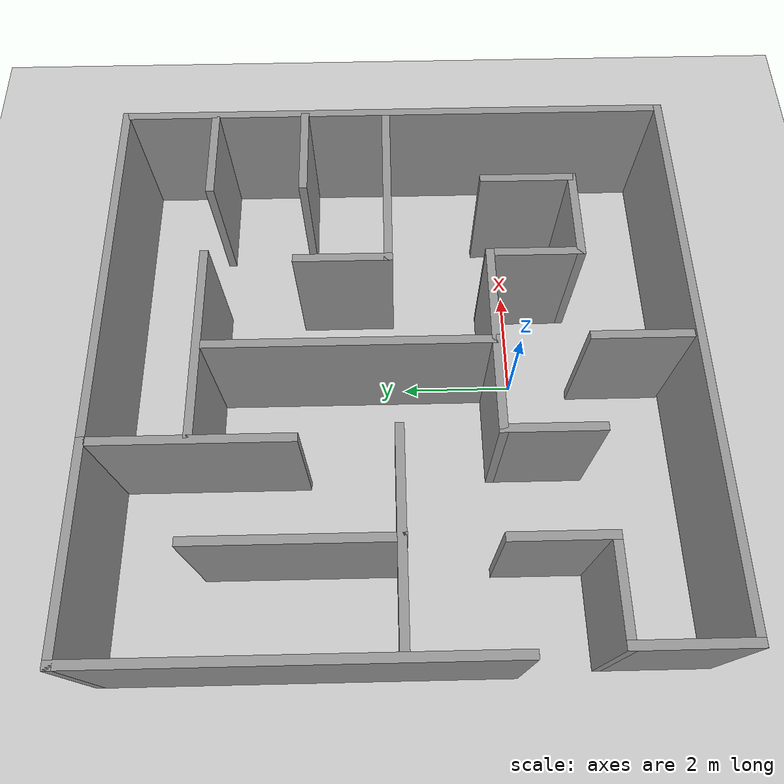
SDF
<sdf version="1.4">
   <world name="default">

     <scene>
       <ambient>0.4 0.4 0.4 1</ambient>
       <background>0.7 0.7 0.7 1</background>
       <shadows>true</shadows>
     </scene>

     <!-- A global light source -->
     <include>
       <uri>model://sun</uri>
     </include>

     <!-- A ground plane -->
     <include>
       <uri>model://ground_plane</uri>
     </include>

     <!-- Maze -->
     <include>
       <uri>model://simple_maze2</uri>
 	     <pose>-0.25 2.125 0 0 0 0</pose>
     </include>

     <physics type="ode">
       <real_time_update_rate>1000.0</real_time_update_rate>
       <max_step_size>0.001</max_step_size>
       <real_time_factor>1</real_time_factor>
       <ode>
         <solver>
           <type>quick</type>
           <iters>150</iters>
           <precon_iters>0</precon_iters>
           <sor>1.400000</sor>
           <use_dynamic_moi_rescaling>1</use_dynamic_moi_rescaling>
         </solver>
         <constraints>
           <cfm>0.00001</cfm>
           <erp>0.2</erp>
           <contact_max_correcting_vel>2000.000000</contact_max_correcting_vel>
           <contact_surface_layer>0.01000</contact_surface_layer>
         </constraints>
       </ode>
     </physics>

   </world>

 </sdf>

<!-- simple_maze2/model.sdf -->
<sdf version='1.7'>
  <model name='Untitled'>
    <pose>-0.056878 0.000736 0 0 -0 0</pose>
    <link name='Wall_1'>
      <collision name='Wall_1_Collision'>
        <geometry>
          <box>
            <size>7 0.15 2.5</size>
          </box>
        </geometry>
        <pose>0 0 1.25 0 -0 0</pose>
      </collision>
      <visual name='Wall_1_Visual'>
        <pose>0 0 1.25 0 -0 0</pose>
        <geometry>
          <box>
            <size>7 0.15 2.5</size>
          </box>
        </geometry>
        <material>
          <script>
            <uri>file://media/materials/scripts/gazebo.material</uri>
            <name>Gazebo/Grey</name>
          </script>
          <ambient>1 1 1 1</ambient>
        </material>
        <meta>
          <layer>0</layer>
        </meta>
      </visual>
      <pose>-4.9693 1.62378 0 0 -0 -1.5708</pose>
    </link>
    <link name='Wall_10'>
      <collision name='Wall_10_Collision'>
        <geometry>
          <box>
            <size>1.75 0.15 2.5</size>
          </box>
        </geometry>
        <pose>0 0 1.25 0 -0 0</pose>
      </collision>
      <visual name='Wall_10_Visual'>
        <pose>0 0 1.25 0 -0 0</pose>
        <geometry>
          <box>
            <size>1.75 0.15 2.5</size>
          </box>
        </geometry>
        <material>
          <script>
            <uri>file://media/materials/scripts/gazebo.material</uri>
            <name>Gazebo/Grey</name>
          </script>
          <ambient>1 1 1 1</ambient>
        </material>
        <meta>
          <layer>0</layer>
        </meta>
      </visual>
      <pose>-1.53873 -2.43052 0 0 -0 -1.5708</pose>
    </link>
    <link name='Wall_12'>
      <collision name='Wall_12_Collision'>
        <geometry>
          <box>
            <size>1.75 0.15 2.5</size>
          </box>
        </geometry>
        <pose>0 0 1.25 0 -0 0</pose>
      </collision>
      <visual name='Wall_12_Visual'>
        <pose>0 0 1.25 0 -0 0</pose>
        <geometry>
          <box>
            <size>1.75 0.15 2.5</size>
          </box>
        </geometry>
        <material>
          <script>
            <uri>file://media/materials/scripts/gazebo.material</uri>
            <name>Gazebo/Grey</name>
          </script>
          <ambient>1 1 1 1</ambient>
        </material>
        <meta>
          <layer>0</layer>
        </meta>
      </visual>
      <pose>-3.28072 -2.40001 0 0 -0 -1.5708</pose>
    </link>
    <link name='Wall_13'>
      <collision name='Wall_13_Collision'>
        <geometry>
          <box>
            <size>1.75 0.15 2.5</size>
          </box>
        </geometry>
        <pose>0 0 1.25 0 -0 0</pose>
      </collision>
      <visual name='Wall_13_Visual'>
        <pose>0 0 1.25 0 -0 0</pose>
        <geometry>
          <box>
            <size>1.75 0.15 2.5</size>
          </box>
        </geometry>
        <material>
          <script>
            <uri>file://media/materials/scripts/gazebo.material</uri>
            <name>Gazebo/Grey</name>
          </script>
          <ambient>1 1 1 1</ambient>
        </material>
        <meta>
          <layer>0</layer>
        </meta>
      </visual>
      <pose>-4.08072 -3.20001 0 0 -0 3.14159</pose>
    </link>
    <link name='Wall_14'>
      <collision name='Wall_14_Collision'>
        <geometry>
          <box>
            <size>2 0.15 2.5</size>
          </box>
        </geometry>
        <pose>0 0 1.25 0 -0 0</pose>
      </collision>
      <visual name='Wall_14_Visual'>
        <pose>0 0 1.25 0 -0 0</pose>
        <geometry>
          <box>
            <size>2 0.15 2.5</size>
          </box>
        </geometry>
        <material>
          <script>
            <uri>file://media/materials/scripts/gazebo.material</uri>
            <name>Gazebo/Grey</name>
          </script>
          <ambient>1 1 1 1</ambient>
        </material>
        <meta>
          <layer>0</layer>
        </meta>
      </visual>
      <pose>-4.88072 -4.12501 0 0 -0 -1.5708</pose>
    </link>
    <link name='Wall_15'>
      <collision name='Wall_15_Collision'>
        <geometry>
          <box>
            <size>10 0.15 2.5</size>
          </box>
        </geometry>
        <pose>0 0 1.25 0 -0 0</pose>
      </collision>
      <visual name='Wall_15_Visual'>
        <pose>0 0 1.25 0 -0 0</pose>
        <geometry>
          <box>
            <size>10 0.15 2.5</size>
          </box>
        </geometry>
        <material>
          <script>
            <uri>file://media/materials/scripts/gazebo.material</uri>
            <name>Gazebo/Grey</name>
          </script>
          <ambient>1 1 1 1</ambient>
        </material>
        <meta>
          <layer>0</layer>
        </meta>
      </visual>
      <pose>0.044284 -5.05001 0 0 -0 0</pose>
    </link>
    <link name='Wall_16'>
      <collision name='Wall_16_Collision'>
        <geometry>
          <box>
            <size>10.25 0.15 2.5</size>
          </box>
        </geometry>
        <pose>0 0 1.25 0 -0 0</pose>
      </collision>
      <visual name='Wall_16_Visual'>
        <pose>0 0 1.25 0 -0 0</pose>
        <geometry>
          <box>
            <size>10.25 0.15 2.5</size>
          </box>
        </geometry>
        <material>
          <script>
            <uri>file://media/materials/scripts/gazebo.material</uri>
            <name>Gazebo/Grey</name>
          </script>
          <ambient>1 1 1 1</ambient>
        </material>
        <meta>
          <layer>0</layer>
        </meta>
      </visual>
      <pose>4.96928 -7e-06 0 0 -0 1.5708</pose>
    </link>
    <link name='Wall_17'>
      <collision name='Wall_17_Collision'>
        <geometry>
          <box>
            <size>6.73858 0.15 2.5</size>
          </box>
        </geometry>
        <pose>0 0 1.25 0 -0 0</pose>
      </collision>
      <visual name='Wall_17_Visual'>
        <pose>0 0 1.25 0 -0 0</pose>
        <geometry>
          <box>
            <size>6.73858 0.15 2.5</size>
          </box>
        </geometry>
        <material>
          <script>
            <uri>file://media/materials/scripts/gazebo.material</uri>
            <name>Gazebo/Grey</name>
          </script>
          <ambient>1 1 1 1</ambient>
        </material>
        <meta>
          <layer>0</layer>
        </meta>
      </visual>
      <pose>1.67499 5.04939 0 0 -0 -3.14141</pose>
    </link>
    <link name='Wall_20'>
      <collision name='Wall_20_Collision'>
        <geometry>
          <box>
            <size>1.75 0.15 2.5</size>
          </box>
        </geometry>
        <pose>0 0 1.25 0 -0 0</pose>
      </collision>
      <visual name='Wall_20_Visual'>
        <pose>0 0 1.25 0 -0 0</pose>
        <geometry>
          <box>
            <size>1.75 0.15 2.5</size>
          </box>
        </geometry>
        <material>
          <script>
            <uri>file://media/materials/scripts/gazebo.material</uri>
            <name>Gazebo/Grey</name>
          </script>
          <ambient>1 1 1 1</ambient>
        </material>
        <meta>
          <layer>0</layer>
        </meta>
      </visual>
      <pose>1.71467 0.941976 0 0 -0 -1.5708</pose>
    </link>
    <link name='Wall_21'>
      <collision name='Wall_21_Collision'>
        <geometry>
          <box>
            <size>3.25 0.15 2.5</size>
          </box>
        </geometry>
        <pose>0 0 1.25 0 -0 0</pose>
      </collision>
      <visual name='Wall_21_Visual'>
        <pose>0 0 1.25 0 -0 0</pose>
        <geometry>
          <box>
            <size>3.25 0.15 2.5</size>
          </box>
        </geometry>
        <material>
          <script>
            <uri>file://media/materials/scripts/gazebo.material</uri>
            <name>Gazebo/Grey</name>
          </script>
          <ambient>1 1 1 1</ambient>
        </material>
        <meta>
          <layer>0</layer>
        </meta>
      </visual>
      <pose>3.26467 0.141976 0 0 -0 0</pose>
    </link>
    <link name='Wall_23'>
      <collision name='Wall_23_Collision'>
        <geometry>
          <box>
            <size>1.75 0.15 2.5</size>
          </box>
        </geometry>
        <pose>0 0 1.25 0 -0 0</pose>
      </collision>
      <visual name='Wall_23_Visual'>
        <pose>0 0 1.25 0 -0 0</pose>
        <geometry>
          <box>
            <size>1.75 0.15 2.5</size>
          </box>
        </geometry>
        <material>
          <script>
            <uri>file://media/materials/scripts/gazebo.material</uri>
            <name>Gazebo/Grey</name>
          </script>
          <ambient>1 1 1 1</ambient>
        </material>
        <meta>
          <layer>0</layer>
        </meta>
      </visual>
      <pose>4.09771 1.67162 0 0 -0 0</pose>
    </link>
    <link name='Wall_25'>
      <collision name='Wall_25_Collision'>
        <geometry>
          <box>
            <size>1.75 0.15 2.5</size>
          </box>
        </geometry>
        <pose>0 0 1.25 0 -0 0</pose>
      </collision>
      <visual name='Wall_25_Visual'>
        <pose>0 0 1.25 0 -0 0</pose>
        <geometry>
          <box>
            <size>1.75 0.15 2.5</size>
          </box>
        </geometry>
        <material>
          <script>
            <uri>file://media/materials/scripts/gazebo.material</uri>
            <name>Gazebo/Grey</name>
          </script>
          <ambient>1 1 1 1</ambient>
        </material>
        <meta>
          <layer>0</layer>
        </meta>
      </visual>
      <pose>4.06253 3.3602 0 0 -0 0</pose>
    </link>
    <link name='Wall_28'>
      <collision name='Wall_28_Collision'>
        <geometry>
          <box>
            <size>3.5 0.15 2.5</size>
          </box>
        </geometry>
        <pose>0 0 1.25 0 -0 0</pose>
      </collision>
      <visual name='Wall_28_Visual'>
        <pose>0 0 1.25 0 -0 0</pose>
        <geometry>
          <box>
            <size>3.5 0.15 2.5</size>
          </box>
        </geometry>
        <material>
          <script>
            <uri>file://media/materials/scripts/gazebo.material</uri>
            <name>Gazebo/Grey</name>
          </script>
          <ambient>1 1 1 1</ambient>
        </material>
        <meta>
          <layer>0</layer>
        </meta>
      </visual>
      <pose>-3.24554 1.6852 0 0 -0 -1.5708</pose>
    </link>
    <link name='Wall_3'>
      <collision name='Wall_3_Collision'>
        <geometry>
          <box>
            <size>3.5 0.15 2.5</size>
          </box>
        </geometry>
        <pose>0 0 1.25 0 -0 0</pose>
      </collision>
      <visual name='Wall_3_Visual'>
        <pose>0 0 1.25 0 -0 0</pose>
        <geometry>
          <box>
            <size>3.5 0.15 2.5</size>
          </box>
        </geometry>
        <material>
          <script>
            <uri>file://media/materials/scripts/gazebo.material</uri>
            <name>Gazebo/Grey</name>
          </script>
          <ambient>1 1 1 1</ambient>
        </material>
        <meta>
          <layer>0</layer>
        </meta>
      </visual>
      <pose>-3.2943 5.04878 0 0 -0 0</pose>
    </link>
    <link name='Wall_30'>
      <collision name='Wall_30_Collision'>
        <geometry>
          <box>
            <size>3.5 0.15 2.5</size>
          </box>
        </geometry>
        <pose>0 0 1.25 0 -0 0</pose>
      </collision>
      <visual name='Wall_30_Visual'>
        <pose>0 0 1.25 0 -0 0</pose>
        <geometry>
          <box>
            <size>3.5 0.15 2.5</size>
          </box>
        </geometry>
        <material>
          <script>
            <uri>file://media/materials/scripts/gazebo.material</uri>
            <name>Gazebo/Grey</name>
          </script>
          <ambient>1 1 1 1</ambient>
        </material>
        <meta>
          <layer>0</layer>
        </meta>
      </visual>
      <pose>-3.15358 0.018216 0 0 -0 0</pose>
    </link>
    <link name='Wall_32'>
      <collision name='Wall_32_Collision'>
        <geometry>
          <box>
            <size>1.75 0.15 2.5</size>
          </box>
        </geometry>
        <pose>0 0 1.25 0 -0 0</pose>
      </collision>
      <visual name='Wall_32_Visual'>
        <pose>0 0 1.25 0 -0 0</pose>
        <geometry>
          <box>
            <size>1.75 0.15 2.5</size>
          </box>
        </geometry>
        <material>
          <script>
            <uri>file://media/materials/scripts/gazebo.material</uri>
            <name>Gazebo/Grey</name>
          </script>
          <ambient>1 1 1 1</ambient>
        </material>
        <meta>
          <layer>0</layer>
        </meta>
      </visual>
      <pose>3.36807 -2.43519 0 0 -0 -1.5708</pose>
    </link>
    <link name='Wall_33'>
      <collision name='Wall_33_Collision'>
        <geometry>
          <box>
            <size>1.75 0.15 2.5</size>
          </box>
        </geometry>
        <pose>0 0 1.25 0 -0 0</pose>
      </collision>
      <visual name='Wall_33_Visual'>
        <pose>0 0 1.25 0 -0 0</pose>
        <geometry>
          <box>
            <size>1.75 0.15 2.5</size>
          </box>
        </geometry>
        <material>
          <script>
            <uri>file://media/materials/scripts/gazebo.material</uri>
            <name>Gazebo/Grey</name>
          </script>
          <ambient>1 1 1 1</ambient>
        </material>
        <meta>
          <layer>0</layer>
        </meta>
      </visual>
      <pose>2.56807 -3.23518 0 0 -0 3.14159</pose>
    </link>
    <link name='Wall_34'>
      <collision name='Wall_34_Collision'>
        <geometry>
          <box>
            <size>1.75 0.15 2.5</size>
          </box>
        </geometry>
        <pose>0 0 1.25 0 -0 0</pose>
      </collision>
      <visual name='Wall_34_Visual'>
        <pose>0 0 1.25 0 -0 0</pose>
        <geometry>
          <box>
            <size>1.75 0.15 2.5</size>
          </box>
        </geometry>
        <material>
          <script>
            <uri>file://media/materials/scripts/gazebo.material</uri>
            <name>Gazebo/Grey</name>
          </script>
          <ambient>1 1 1 1</ambient>
        </material>
        <meta>
          <layer>0</layer>
        </meta>
      </visual>
      <pose>1.76807 -2.43519 0 0 -0 1.5708</pose>
    </link>
    <link name='Wall_35'>
      <collision name='Wall_35_Collision'>
        <geometry>
          <box>
            <size>1.85681 0.15 2.5</size>
          </box>
        </geometry>
        <pose>0 0 1.25 0 -0 0</pose>
      </collision>
      <visual name='Wall_35_Visual'>
        <pose>0 0 1.25 0 -0 0</pose>
        <geometry>
          <box>
            <size>1.85681 0.15 2.5</size>
          </box>
        </geometry>
        <material>
          <script>
            <uri>file://media/materials/scripts/gazebo.material</uri>
            <name>Gazebo/Grey</name>
          </script>
          <ambient>1 1 1 1</ambient>
        </material>
        <meta>
          <layer>0</layer>
        </meta>
      </visual>
      <pose>0.914668 -1.63285 0 0 -0 3.13886</pose>
    </link>
    <link name='Wall_37'>
      <collision name='Wall_37_Collision'>
        <geometry>
          <box>
            <size>1.75 0.15 2.5</size>
          </box>
        </geometry>
        <pose>0 0 1.25 0 -0 0</pose>
      </collision>
      <visual name='Wall_37_Visual'>
        <pose>0 0 1.25 0 -0 0</pose>
        <geometry>
          <box>
            <size>1.75 0.15 2.5</size>
          </box>
        </geometry>
        <material>
          <script>
            <uri>file://media/materials/scripts/gazebo.material</uri>
            <name>Gazebo/Grey</name>
          </script>
          <ambient>1 1 1 1</ambient>
        </material>
        <meta>
          <layer>0</layer>
        </meta>
      </visual>
      <pose>0.096445 -4.07163 0 0 -0 1.5708</pose>
    </link>
    <link name='Wall_4'>
      <collision name='Wall_4_Collision'>
        <geometry>
          <box>
            <size>3.5 0.15 2.5</size>
          </box>
        </geometry>
        <pose>0 0 1.25 0 -0 0</pose>
      </collision>
      <visual name='Wall_4_Visual'>
        <pose>0 0 1.25 0 -0 0</pose>
        <geometry>
          <box>
            <size>3.5 0.15 2.5</size>
          </box>
        </geometry>
        <material>
          <script>
            <uri>file://media/materials/scripts/gazebo.material</uri>
            <name>Gazebo/Grey</name>
          </script>
          <ambient>1 1 1 1</ambient>
        </material>
        <meta>
          <layer>0</layer>
        </meta>
      </visual>
      <pose>-1.6193 3.37378 0 0 -0 -1.5708</pose>
    </link>
    <link name='Wall_6'>
      <collision name='Wall_6_Collision'>
        <geometry>
          <box>
            <size>3.5 0.15 2.5</size>
          </box>
        </geometry>
        <pose>0 0 1.25 0 -0 0</pose>
      </collision>
      <visual name='Wall_6_Visual'>
        <pose>0 0 1.25 0 -0 0</pose>
        <geometry>
          <box>
            <size>3.5 0.15 2.5</size>
          </box>
        </geometry>
        <material>
          <script>
            <uri>file://media/materials/scripts/gazebo.material</uri>
            <name>Gazebo/Grey</name>
          </script>
          <ambient>1 1 1 1</ambient>
        </material>
        <meta>
          <layer>0</layer>
        </meta>
      </visual>
      <pose>0.153222 3.3602 0 0 -0 0</pose>
    </link>
    <link name='Wall_8'>
      <collision name='Wall_8_Collision'>
        <geometry>
          <box>
            <size>5 0.15 2.5</size>
          </box>
        </geometry>
        <pose>0 0 1.25 0 -0 0</pose>
      </collision>
      <visual name='Wall_8_Visual'>
        <pose>0 0 1.25 0 -0 0</pose>
        <geometry>
          <box>
            <size>5 0.15 2.5</size>
          </box>
        </geometry>
        <material>
          <script>
            <uri>file://media/materials/scripts/gazebo.material</uri>
            <name>Gazebo/Grey</name>
          </script>
          <ambient>1 1 1 1</ambient>
        </material>
        <meta>
          <layer>0</layer>
        </meta>
      </visual>
      <pose>0.061266 0.794484 0 0 -0 -1.5708</pose>
    </link>
    <link name='Wall_9'>
      <collision name='Wall_9_Collision'>
        <geometry>
          <box>
            <size>1.75 0.15 2.5</size>
          </box>
        </geometry>
        <pose>0 0 1.25 0 -0 0</pose>
      </collision>
      <visual name='Wall_9_Visual'>
        <pose>0 0 1.25 0 -0 0</pose>
        <geometry>
          <box>
            <size>1.75 0.15 2.5</size>
          </box>
        </geometry>
        <material>
          <script>
            <uri>file://media/materials/scripts/gazebo.material</uri>
            <name>Gazebo/Grey</name>
          </script>
          <ambient>1 1 1 1</ambient>
        </material>
        <meta>
          <layer>0</layer>
        </meta>
      </visual>
      <pose>-0.738734 -1.63052 0 0 -0 3.14159</pose>
    </link>
    <static>1</static>
  </model>
</sdf>
